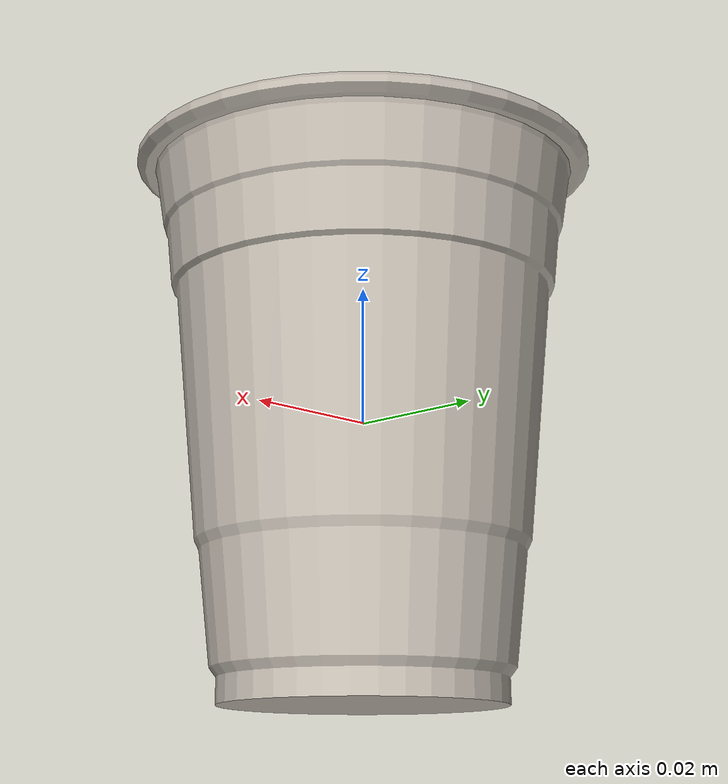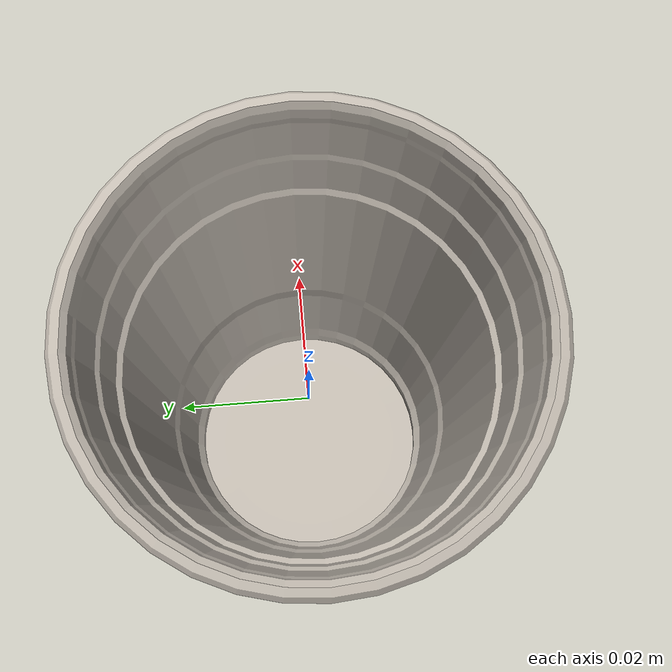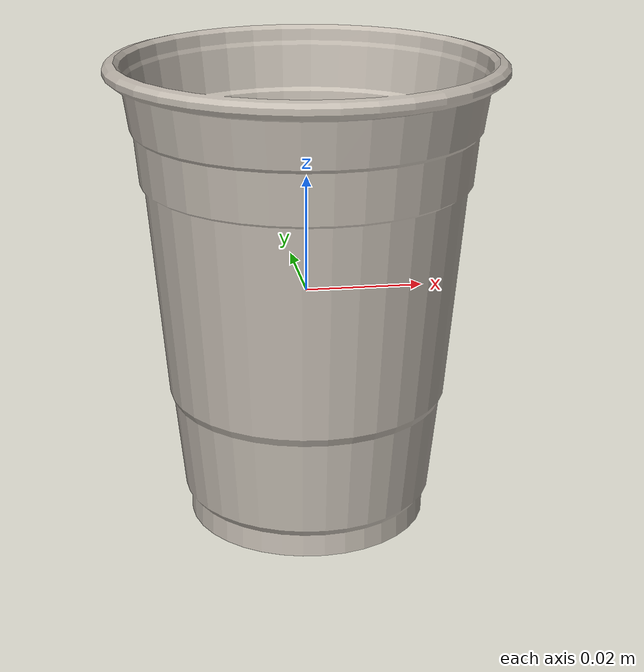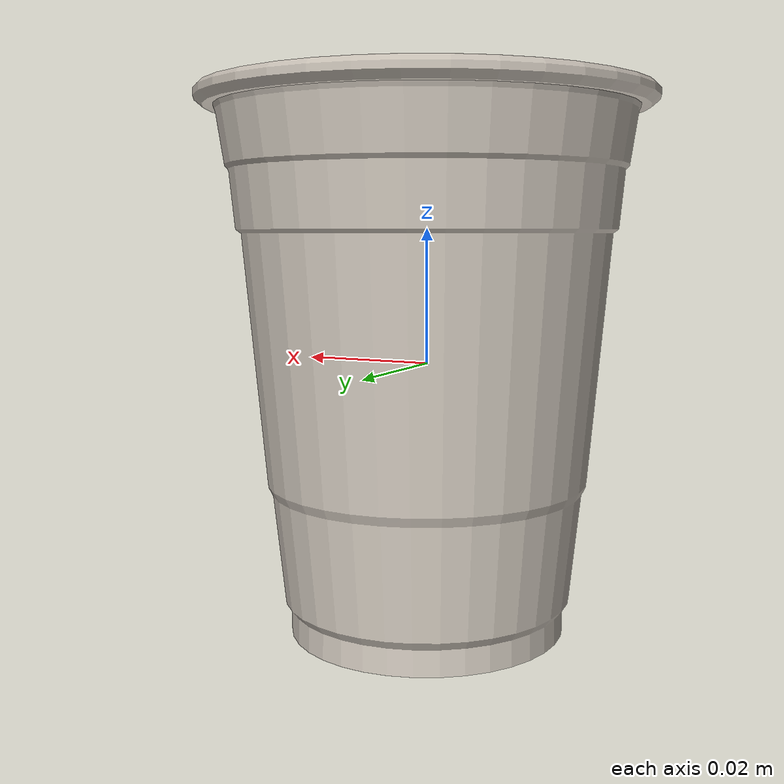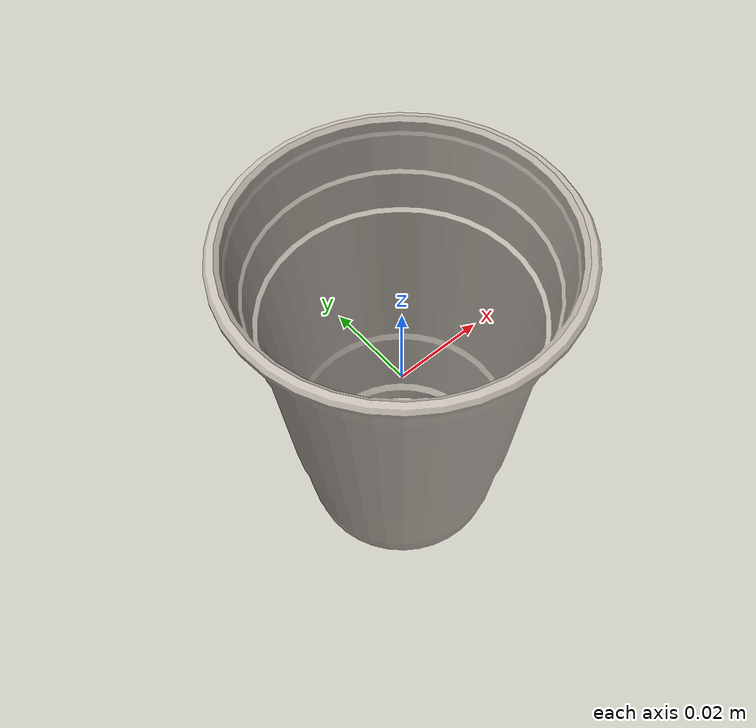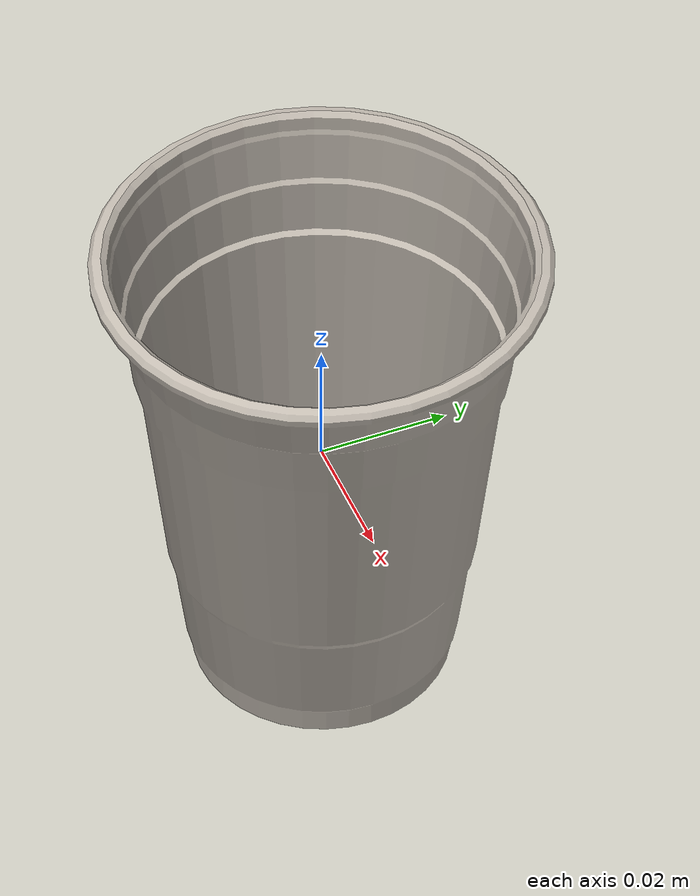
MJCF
<mujoco model="cup_16">
  <asset>
    <texture file="/home/abhiram03/Desktop/mimicgen/robosuite-kitchen/robosuite/models/assets/textures/ceramic.png" name="tex-cup_16" type="2d"/>
    <material name="cup_16" reflectance="0.5" texrepeat="1 1" texture="tex-cup_16" texuniform="false"/>
    <mesh file="visual/model_normalized_0.obj" name="model_normalized_0_vis" scale="0.08000000000000002 0.08000000000000002 0.08000000000000002" refquat="1.0 0.0 0.0 0.0"/>
    <mesh file="collision/model_normalized_collision_13.obj" name="model_normalized_collision_13._coll" scale="0.08000000000000002 0.08000000000000002 0.08000000000000002" refquat="1.0 0.0 0.0 0.0"/>
    <mesh file="collision/model_normalized_collision_15.obj" name="model_normalized_collision_15._coll" scale="0.08000000000000002 0.08000000000000002 0.08000000000000002" refquat="1.0 0.0 0.0 0.0"/>
    <mesh file="collision/model_normalized_collision_10.obj" name="model_normalized_collision_10._coll" scale="0.08000000000000002 0.08000000000000002 0.08000000000000002" refquat="1.0 0.0 0.0 0.0"/>
    <mesh file="collision/model_normalized_collision_26.obj" name="model_normalized_collision_26._coll" scale="0.08000000000000002 0.08000000000000002 0.08000000000000002" refquat="1.0 0.0 0.0 0.0"/>
    <mesh file="collision/model_normalized_collision_25.obj" name="model_normalized_collision_25._coll" scale="0.08000000000000002 0.08000000000000002 0.08000000000000002" refquat="1.0 0.0 0.0 0.0"/>
    <mesh file="collision/model_normalized_collision_5.obj" name="model_normalized_collision_5._coll" scale="0.08000000000000002 0.08000000000000002 0.08000000000000002" refquat="1.0 0.0 0.0 0.0"/>
    <mesh file="collision/model_normalized_collision_31.obj" name="model_normalized_collision_31._coll" scale="0.08000000000000002 0.08000000000000002 0.08000000000000002" refquat="1.0 0.0 0.0 0.0"/>
    <mesh file="collision/model_normalized_collision_3.obj" name="model_normalized_collision_3._coll" scale="0.08000000000000002 0.08000000000000002 0.08000000000000002" refquat="1.0 0.0 0.0 0.0"/>
    <mesh file="collision/model_normalized_collision_14.obj" name="model_normalized_collision_14._coll" scale="0.08000000000000002 0.08000000000000002 0.08000000000000002" refquat="1.0 0.0 0.0 0.0"/>
    <mesh file="collision/model_normalized_collision_28.obj" name="model_normalized_collision_28._coll" scale="0.08000000000000002 0.08000000000000002 0.08000000000000002" refquat="1.0 0.0 0.0 0.0"/>
    <mesh file="collision/model_normalized_collision_11.obj" name="model_normalized_collision_11._coll" scale="0.08000000000000002 0.08000000000000002 0.08000000000000002" refquat="1.0 0.0 0.0 0.0"/>
    <mesh file="collision/model_normalized_collision_29.obj" name="model_normalized_collision_29._coll" scale="0.08000000000000002 0.08000000000000002 0.08000000000000002" refquat="1.0 0.0 0.0 0.0"/>
    <mesh file="collision/model_normalized_collision_24.obj" name="model_normalized_collision_24._coll" scale="0.08000000000000002 0.08000000000000002 0.08000000000000002" refquat="1.0 0.0 0.0 0.0"/>
    <mesh file="collision/model_normalized_collision_1.obj" name="model_normalized_collision_1._coll" scale="0.08000000000000002 0.08000000000000002 0.08000000000000002" refquat="1.0 0.0 0.0 0.0"/>
    <mesh file="collision/model_normalized_collision_0.obj" name="model_normalized_collision_0._coll" scale="0.08000000000000002 0.08000000000000002 0.08000000000000002" refquat="1.0 0.0 0.0 0.0"/>
    <mesh file="collision/model_normalized_collision_27.obj" name="model_normalized_collision_27._coll" scale="0.08000000000000002 0.08000000000000002 0.08000000000000002" refquat="1.0 0.0 0.0 0.0"/>
    <mesh file="collision/model_normalized_collision_9.obj" name="model_normalized_collision_9._coll" scale="0.08000000000000002 0.08000000000000002 0.08000000000000002" refquat="1.0 0.0 0.0 0.0"/>
    <mesh file="collision/model_normalized_collision_19.obj" name="model_normalized_collision_19._coll" scale="0.08000000000000002 0.08000000000000002 0.08000000000000002" refquat="1.0 0.0 0.0 0.0"/>
    <mesh file="collision/model_normalized_collision_21.obj" name="model_normalized_collision_21._coll" scale="0.08000000000000002 0.08000000000000002 0.08000000000000002" refquat="1.0 0.0 0.0 0.0"/>
    <mesh file="collision/model_normalized_collision_30.obj" name="model_normalized_collision_30._coll" scale="0.08000000000000002 0.08000000000000002 0.08000000000000002" refquat="1.0 0.0 0.0 0.0"/>
    <mesh file="collision/model_normalized_collision_20.obj" name="model_normalized_collision_20._coll" scale="0.08000000000000002 0.08000000000000002 0.08000000000000002" refquat="1.0 0.0 0.0 0.0"/>
    <mesh file="collision/model_normalized_collision_2.obj" name="model_normalized_collision_2._coll" scale="0.08000000000000002 0.08000000000000002 0.08000000000000002" refquat="1.0 0.0 0.0 0.0"/>
    <mesh file="collision/model_normalized_collision_7.obj" name="model_normalized_collision_7._coll" scale="0.08000000000000002 0.08000000000000002 0.08000000000000002" refquat="1.0 0.0 0.0 0.0"/>
    <mesh file="collision/model_normalized_collision_22.obj" name="model_normalized_collision_22._coll" scale="0.08000000000000002 0.08000000000000002 0.08000000000000002" refquat="1.0 0.0 0.0 0.0"/>
    <mesh file="collision/model_normalized_collision_16.obj" name="model_normalized_collision_16._coll" scale="0.08000000000000002 0.08000000000000002 0.08000000000000002" refquat="1.0 0.0 0.0 0.0"/>
    <mesh file="collision/model_normalized_collision_8.obj" name="model_normalized_collision_8._coll" scale="0.08000000000000002 0.08000000000000002 0.08000000000000002" refquat="1.0 0.0 0.0 0.0"/>
    <mesh file="collision/model_normalized_collision_6.obj" name="model_normalized_collision_6._coll" scale="0.08000000000000002 0.08000000000000002 0.08000000000000002" refquat="1.0 0.0 0.0 0.0"/>
    <mesh file="collision/model_normalized_collision_18.obj" name="model_normalized_collision_18._coll" scale="0.08000000000000002 0.08000000000000002 0.08000000000000002" refquat="1.0 0.0 0.0 0.0"/>
    <mesh file="collision/model_normalized_collision_17.obj" name="model_normalized_collision_17._coll" scale="0.08000000000000002 0.08000000000000002 0.08000000000000002" refquat="1.0 0.0 0.0 0.0"/>
    <mesh file="collision/model_normalized_collision_12.obj" name="model_normalized_collision_12._coll" scale="0.08000000000000002 0.08000000000000002 0.08000000000000002" refquat="1.0 0.0 0.0 0.0"/>
    <mesh file="collision/model_normalized_collision_4.obj" name="model_normalized_collision_4._coll" scale="0.08000000000000002 0.08000000000000002 0.08000000000000002" refquat="1.0 0.0 0.0 0.0"/>
    <mesh file="collision/model_normalized_collision_23.obj" name="model_normalized_collision_23._coll" scale="0.08000000000000002 0.08000000000000002 0.08000000000000002" refquat="1.0 0.0 0.0 0.0"/>
    <texture type="2d" name="2a6db72992a9_cup__3d_asset_0_glb_texture_kd" file="visual/2a6db72992a9_cup__3d_asset_0_glb_texture_kd.png"/>
    <material name="Material_0" texture="2a6db72992a9_cup__3d_asset_0_glb_texture_kd" specular="0.5" shininess="0.5"/>
  </asset>
  <worldbody>
    <body>
      <body name="object">
        <geom solimp="0.998 0.998 0.001" solref="0.001 1" density="100" friction="0.95 0.3 0.1" type="mesh" mesh="model_normalized_0_vis" conaffinity="0" contype="0" group="1" material="Material_0"/>
        <geom solimp="0.998 0.998 0.001" solref="0.001 1" density="100" friction="0.95 0.3 0.1" type="mesh" mesh="model_normalized_collision_13._coll" group="0" rgba="0.8 0.8 0.8 0.0"/>
        <geom solimp="0.998 0.998 0.001" solref="0.001 1" density="100" friction="0.95 0.3 0.1" type="mesh" mesh="model_normalized_collision_15._coll" group="0" rgba="0.8 0.8 0.8 0.0"/>
        <geom solimp="0.998 0.998 0.001" solref="0.001 1" density="100" friction="0.95 0.3 0.1" type="mesh" mesh="model_normalized_collision_10._coll" group="0" rgba="0.8 0.8 0.8 0.0"/>
        <geom solimp="0.998 0.998 0.001" solref="0.001 1" density="100" friction="0.95 0.3 0.1" type="mesh" mesh="model_normalized_collision_26._coll" group="0" rgba="0.8 0.8 0.8 0.0"/>
        <geom solimp="0.998 0.998 0.001" solref="0.001 1" density="100" friction="0.95 0.3 0.1" type="mesh" mesh="model_normalized_collision_25._coll" group="0" rgba="0.8 0.8 0.8 0.0"/>
        <geom solimp="0.998 0.998 0.001" solref="0.001 1" density="100" friction="0.95 0.3 0.1" type="mesh" mesh="model_normalized_collision_5._coll" group="0" rgba="0.8 0.8 0.8 0.0"/>
        <geom solimp="0.998 0.998 0.001" solref="0.001 1" density="100" friction="0.95 0.3 0.1" type="mesh" mesh="model_normalized_collision_31._coll" group="0" rgba="0.8 0.8 0.8 0.0"/>
        <geom solimp="0.998 0.998 0.001" solref="0.001 1" density="100" friction="0.95 0.3 0.1" type="mesh" mesh="model_normalized_collision_3._coll" group="0" rgba="0.8 0.8 0.8 0.0"/>
        <geom solimp="0.998 0.998 0.001" solref="0.001 1" density="100" friction="0.95 0.3 0.1" type="mesh" mesh="model_normalized_collision_14._coll" group="0" rgba="0.8 0.8 0.8 0.0"/>
        <geom solimp="0.998 0.998 0.001" solref="0.001 1" density="100" friction="0.95 0.3 0.1" type="mesh" mesh="model_normalized_collision_28._coll" group="0" rgba="0.8 0.8 0.8 0.0"/>
        <geom solimp="0.998 0.998 0.001" solref="0.001 1" density="100" friction="0.95 0.3 0.1" type="mesh" mesh="model_normalized_collision_11._coll" group="0" rgba="0.8 0.8 0.8 0.0"/>
        <geom solimp="0.998 0.998 0.001" solref="0.001 1" density="100" friction="0.95 0.3 0.1" type="mesh" mesh="model_normalized_collision_29._coll" group="0" rgba="0.8 0.8 0.8 0.0"/>
        <geom solimp="0.998 0.998 0.001" solref="0.001 1" density="100" friction="0.95 0.3 0.1" type="mesh" mesh="model_normalized_collision_24._coll" group="0" rgba="0.8 0.8 0.8 0.0"/>
        <geom solimp="0.998 0.998 0.001" solref="0.001 1" density="100" friction="0.95 0.3 0.1" type="mesh" mesh="model_normalized_collision_1._coll" group="0" rgba="0.8 0.8 0.8 0.0"/>
        <geom solimp="0.998 0.998 0.001" solref="0.001 1" density="100" friction="0.95 0.3 0.1" type="mesh" mesh="model_normalized_collision_0._coll" group="0" rgba="0.8 0.8 0.8 0.0"/>
        <geom solimp="0.998 0.998 0.001" solref="0.001 1" density="100" friction="0.95 0.3 0.1" type="mesh" mesh="model_normalized_collision_27._coll" group="0" rgba="0.8 0.8 0.8 0.0"/>
        <geom solimp="0.998 0.998 0.001" solref="0.001 1" density="100" friction="0.95 0.3 0.1" type="mesh" mesh="model_normalized_collision_9._coll" group="0" rgba="0.8 0.8 0.8 0.0"/>
        <geom solimp="0.998 0.998 0.001" solref="0.001 1" density="100" friction="0.95 0.3 0.1" type="mesh" mesh="model_normalized_collision_19._coll" group="0" rgba="0.8 0.8 0.8 0.0"/>
        <geom solimp="0.998 0.998 0.001" solref="0.001 1" density="100" friction="0.95 0.3 0.1" type="mesh" mesh="model_normalized_collision_21._coll" group="0" rgba="0.8 0.8 0.8 0.0"/>
        <geom solimp="0.998 0.998 0.001" solref="0.001 1" density="100" friction="0.95 0.3 0.1" type="mesh" mesh="model_normalized_collision_30._coll" group="0" rgba="0.8 0.8 0.8 0.0"/>
        <geom solimp="0.998 0.998 0.001" solref="0.001 1" density="100" friction="0.95 0.3 0.1" type="mesh" mesh="model_normalized_collision_20._coll" group="0" rgba="0.8 0.8 0.8 0.0"/>
        <geom solimp="0.998 0.998 0.001" solref="0.001 1" density="100" friction="0.95 0.3 0.1" type="mesh" mesh="model_normalized_collision_2._coll" group="0" rgba="0.8 0.8 0.8 0.0"/>
        <geom solimp="0.998 0.998 0.001" solref="0.001 1" density="100" friction="0.95 0.3 0.1" type="mesh" mesh="model_normalized_collision_7._coll" group="0" rgba="0.8 0.8 0.8 0.0"/>
        <geom solimp="0.998 0.998 0.001" solref="0.001 1" density="100" friction="0.95 0.3 0.1" type="mesh" mesh="model_normalized_collision_22._coll" group="0" rgba="0.8 0.8 0.8 0.0"/>
        <geom solimp="0.998 0.998 0.001" solref="0.001 1" density="100" friction="0.95 0.3 0.1" type="mesh" mesh="model_normalized_collision_16._coll" group="0" rgba="0.8 0.8 0.8 0.0"/>
        <geom solimp="0.998 0.998 0.001" solref="0.001 1" density="100" friction="0.95 0.3 0.1" type="mesh" mesh="model_normalized_collision_8._coll" group="0" rgba="0.8 0.8 0.8 0.0"/>
        <geom solimp="0.998 0.998 0.001" solref="0.001 1" density="100" friction="0.95 0.3 0.1" type="mesh" mesh="model_normalized_collision_6._coll" group="0" rgba="0.8 0.8 0.8 0.0"/>
        <geom solimp="0.998 0.998 0.001" solref="0.001 1" density="100" friction="0.95 0.3 0.1" type="mesh" mesh="model_normalized_collision_18._coll" group="0" rgba="0.8 0.8 0.8 0.0"/>
        <geom solimp="0.998 0.998 0.001" solref="0.001 1" density="100" friction="0.95 0.3 0.1" type="mesh" mesh="model_normalized_collision_17._coll" group="0" rgba="0.8 0.8 0.8 0.0"/>
        <geom solimp="0.998 0.998 0.001" solref="0.001 1" density="100" friction="0.95 0.3 0.1" type="mesh" mesh="model_normalized_collision_12._coll" group="0" rgba="0.8 0.8 0.8 0.0"/>
        <geom solimp="0.998 0.998 0.001" solref="0.001 1" density="100" friction="0.95 0.3 0.1" type="mesh" mesh="model_normalized_collision_4._coll" group="0" rgba="0.8 0.8 0.8 0.0"/>
        <geom solimp="0.998 0.998 0.001" solref="0.001 1" density="100" friction="0.95 0.3 0.1" type="mesh" mesh="model_normalized_collision_23._coll" group="0" rgba="0.8 0.8 0.8 0.0"/>
      </body>
      <site rgba="0 0 0 0" size="0.005" pos="-0.00017469119999999897 0.0001893316000000001 -0.04060606240000001" name="bottom_site"/>
      <site rgba="0 0 0 0" size="0.005" pos="-0.00017469119999999897 0.0001893316000000001 0.040606061600000014" name="top_site"/>
      <site rgba="0 0 0 0" size="0.005" pos="0.028310158400000007 0.028674180800000008 -4.000000020099038e-10" name="horizontal_radius_site"/>
    </body>
  </worldbody>
</mujoco>
